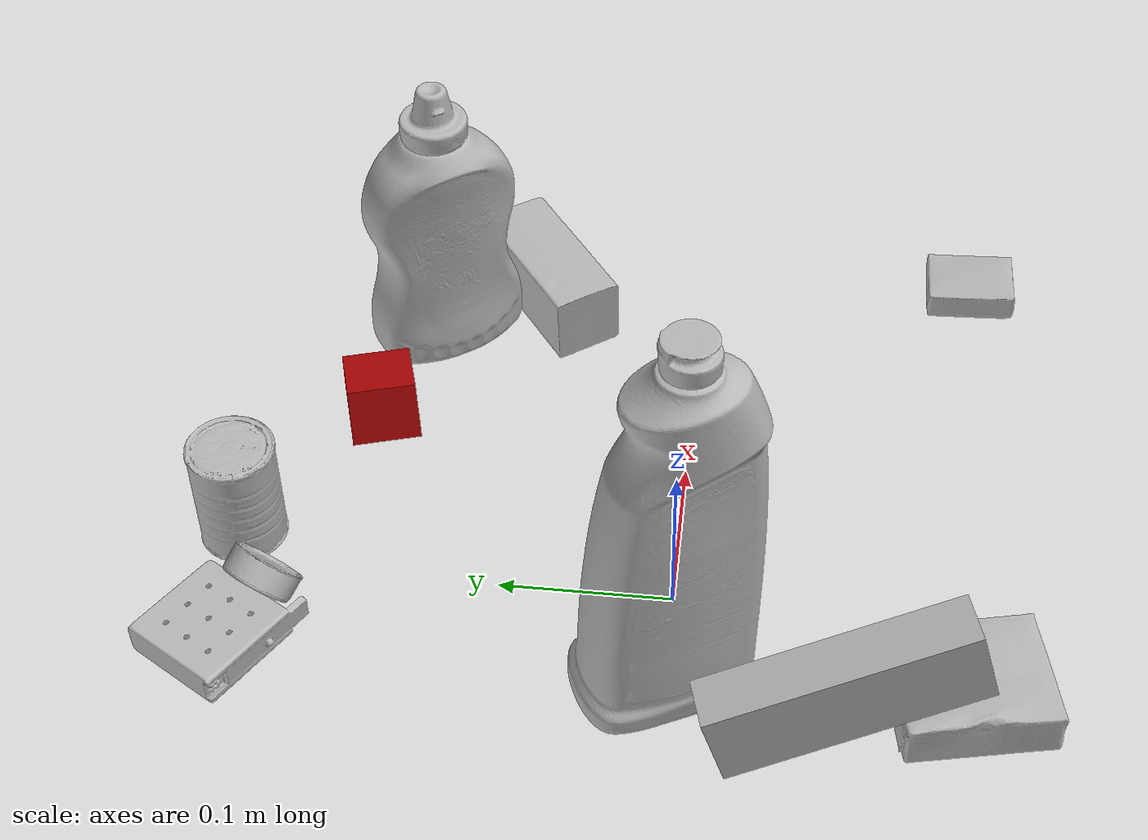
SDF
<sdf version="1.4">
  <world name="default">
    <light name="light1" type="point">
      <pose>0 0 1 0 0 0</pose>
      <diffuse>3 3 3 1</diffuse>
      <specular>3 3 3 1</specular>
    </light>
    <light name="light2" type="point">
      <pose>0 0.5 2 0 0 0</pose>
      <diffuse>1 1 1 1</diffuse>
      <specular>1 1 1 1</specular>
    </light>
    <light name="light3" type="point">
      <pose>0 0.5 2 0 0 0</pose>
      <diffuse>3 3 3 1</diffuse>
      <specular>3 3 3 1</specular>
    </light>
    <scene>
      <ambient>0.7 0.7 0.7</ambient>
    </scene>
    <model name="bottle1">
      <link name="link_bottle1">
        <collision name="default">
          <geometry>
            <mesh>
              <uri>model://mustard_bottle/collision_meshes/collision.obj</uri>
              <scale>1.0 1.0 1.0</scale>
            </mesh>
          </geometry>
          <surface>
            <friction>
              <ode>
                <mu>0.5</mu>
                <mu2>0.5</mu2>
              </ode>
            </friction>
          <contact>
        <ode>
            <max_vel>0</max_vel>
            <min_depth>0.0001</min_depth>
            <kp>1e8</kp>
        </ode>
    </contact></surface>
        </collision>
        <visual name="default">
          <geometry>
            <mesh>
              <uri>model://mustard_bottle/visual_meshes/visual.dae</uri>
              <scale>1.0 1.0 1.0</scale>
            </mesh>
          </geometry>
        </visual>
        <inertial>
          <mass>0.6762011647224426</mass>
          <pose>0.0005032454500906169 -0.00015647402324248105 -0.0174757931381464 0.0004182330054410876 0.0009465793907204819 0.02485376893997312</pose>
          <inertia>
            <ixx>0.001877718</ixx>
            <iyy>0.0016475386</iyy>
            <izz>0.0004948735</izz>
            <ixy>0</ixy>
            <ixz>0</ixz>
            <iyz>0</iyz>
          </inertia>
        </inertial>
      </link>
      <pose>0.20956969261169434 0.16297370195388794 0.09615202248096466 1.5153036769805884e-05 1.6853685832837085e-05 -2.5324512954043614</pose>
    </model>
    <model name="bottle2">
      <link name="link_bottle2">
        <collision name="default">
          <geometry>
            <mesh>
              <uri>model://bleach_cleanser/collision_meshes/collision.obj</uri>
              <scale>1.0 1.0 1.0</scale>
            </mesh>
          </geometry>
          <surface>
            <friction>
              <ode>
                <mu>0.5</mu>
                <mu2>0.5</mu2>
              </ode>
            </friction>
          <contact>
        <ode>
            <max_vel>0</max_vel>
            <min_depth>0.0001</min_depth>
            <kp>1e8</kp>
        </ode>
    </contact></surface>
        </collision>
        <visual name="default">
          <geometry>
            <mesh>
              <uri>model://bleach_cleanser/visual_meshes/visual.dae</uri>
              <scale>1.0 1.0 1.0</scale>
            </mesh>
          </geometry>
        </visual>
        <inertial>
          <mass>1.3947629928588867</mass>
          <pose>0.00012193183647468686 0.0037838828284293413 -0.02442161738872528 -0.07381670616230765 0.000420115363335565 -0.006875068774372656</pose>
          <inertia>
            <ixx>0.0067885136</ixx>
            <iyy>0.006325901</iyy>
            <izz>0.0011606595</izz>
            <ixy>0</ixy>
            <ixz>0</ixz>
            <iyz>0</iyz>
          </inertia>
        </inertial>
      </link>
      <pose>-0.054424792528152466 0.001064325449988246 0.12578415870666504 -0.00020029483081847953 1.6162023384173062e-05 -2.6892401541355806</pose>
    </model>
    <model name="toy1">
      <link name="link_toy1">
        <collision name="default">
          <geometry>
            <mesh>
              <uri>model://nine_hole_peg_test/collision_meshes/collision.obj</uri>
              <scale>0.5 0.5 0.5</scale>
            </mesh>
          </geometry>
          <surface>
            <friction>
              <ode>
                <mu>0.5</mu>
                <mu2>0.5</mu2>
              </ode>
            </friction>
          <contact>
        <ode>
            <max_vel>0</max_vel>
            <min_depth>0.0001</min_depth>
            <kp>1e8</kp>
        </ode>
    </contact></surface>
        </collision>
        <visual name="default">
          <geometry>
            <mesh>
              <uri>model://nine_hole_peg_test/visual_meshes/visual.dae</uri>
              <scale>0.5 0.5 0.5</scale>
            </mesh>
          </geometry>
        </visual>
        <inertial>
          <mass>0.11556825786828995</mass>
          <pose>-0.0023086932487785816 -0.004823807626962662 1.3230343029135838e-05 -0.0014666797633517714 0.0007194158879745651 -0.6342419016734399</pose>
          <inertia>
            <ixx>4.5177487e-05</ixx>
            <iyy>4.2181746e-05</iyy>
            <izz>7.9164296e-05</izz>
            <ixy>0</ixy>
            <ixz>0</ixz>
            <iyz>0</iyz>
          </inertia>
        </inertial>
      </link>
      <pose>-0.053338322788476944 0.24720045924186707 0.010385501198470592 -1.063985721460912e-08 -2.3402835389266576e-08 -2.1147539133982094</pose>
    </model>
    <model name="toy2">
      <link name="link_toy2">
        <collision name="default">
          <geometry>
            <mesh>
              <uri>model://prism/collision_meshes/collision.obj</uri>
              <scale>0.5 0.5 0.5</scale>
            </mesh>
          </geometry>
          <surface>
            <friction>
              <ode>
                <mu>0.5</mu>
                <mu2>0.5</mu2>
              </ode>
            </friction>
          <contact>
        <ode>
            <max_vel>0</max_vel>
            <min_depth>0.0001</min_depth>
            <kp>1e8</kp>
        </ode>
    </contact></surface>
        </collision>
        <visual name="default">
          <geometry>
            <mesh>
              <uri>model://prism/visual_meshes/visual.dae</uri>
              <scale>0.5 0.5 0.5</scale>
            </mesh>
          </geometry>
        </visual>
        <inertial>
          <mass>0.033433690667152405</mass>
          <pose>-4.9267986469203606e-05 -2.480786349678965e-07 -0.001693455153144896 0.0 0.00655918030046738 0.0</pose>
          <inertia>
            <ixx>7.543374e-06</ixx>
            <iyy>9.116264e-06</iyy>
            <izz>1.1166334e-05</izz>
            <ixy>0</ixy>
            <ixz>0</ixz>
            <iyz>0</iyz>
          </inertia>
        </inertial>
      </link>
      <pose>0.13519150018692017 0.1928470879793167 0.016084996983408928 1.338780621188728e-07 1.7033011760156564e-08 -2.8497010923446227</pose>
    </model>
    <model name="can1">
      <link name="link_can1">
        <collision name="default">
          <geometry>
            <mesh>
              <uri>model://master_chef_can/collision_meshes/collision.obj</uri>
              <scale>0.5 0.5 0.5</scale>
            </mesh>
          </geometry>
          <surface>
            <friction>
              <ode>
                <mu>0.5</mu>
                <mu2>0.5</mu2>
              </ode>
            </friction>
          <contact>
        <ode>
            <max_vel>0</max_vel>
            <min_depth>0.0001</min_depth>
            <kp>1e8</kp>
        </ode>
    </contact></surface>
        </collision>
        <visual name="default">
          <geometry>
            <mesh>
              <uri>model://master_chef_can/visual_meshes/visual.dae</uri>
              <scale>0.5 0.5 0.5</scale>
            </mesh>
          </geometry>
        </visual>
        <inertial>
          <mass>0.10766725987195969</mass>
          <pose>-4.661964703700505e-05 1.3926853625889635e-07 -5.079878610558808e-05 -0.0017995160150511523 0.000647916474058074 -0.6102670332280266</pose>
          <inertia>
            <ixx>6.319339e-05</ixx>
            <iyy>6.2728286e-05</iyy>
            <izz>3.491918e-05</izz>
            <ixy>0</ixy>
            <ixz>0</ixz>
            <iyz>0</iyz>
          </inertia>
        </inertial>
      </link>
      <pose>0.026547154411673546 0.25427618622779846 0.03530197963118553 -1.3239260647761384e-06 -7.943104863570559e-07 -1.030282932591494</pose>
    </model>
    <model name="can2">
      <link name="link_can2">
        <collision name="default">
          <geometry>
            <mesh>
              <uri>model://tuna_fish_can/collision_meshes/collision.obj</uri>
              <scale>0.5 0.5 0.5</scale>
            </mesh>
          </geometry>
          <surface>
            <friction>
              <ode>
                <mu>0.5</mu>
                <mu2>0.5</mu2>
              </ode>
            </friction>
          <contact>
        <ode>
            <max_vel>0</max_vel>
            <min_depth>0.0001</min_depth>
            <kp>1e8</kp>
        </ode>
    </contact></surface>
        </collision>
        <visual name="default">
          <geometry>
            <mesh>
              <uri>model://tuna_fish_can/visual_meshes/visual.dae</uri>
              <scale>0.5 0.5 0.5</scale>
            </mesh>
          </geometry>
        </visual>
        <inertial>
          <mass>0.02740846574306488</mass>
          <pose>-2.0361561837489717e-05 -7.256384378706571e-06 -0.0005269024986773729 -0.0017944791545750336 0.000171617609773777 0.24054039995463303</pose>
          <inertia>
            <ixx>3.7056664e-06</ixx>
            <iyy>3.6902204e-06</iyy>
            <izz>6.3409243e-06</izz>
            <ixy>0</ixy>
            <ixz>0</ixz>
            <iyz>0</iyz>
          </inertia>
        </inertial>
      </link>
      <pose>-0.02184179425239563 0.2300357222557068 0.021523067727684975 0.8407014348019644 -0.5006800134380173 1.4300885995732944</pose>
    </model>
    <model name="box1">
      <link name="link_box1">
        <collision name="default">
          <geometry>
            <mesh>
              <uri>model://gelatin_box/collision_meshes/collision.obj</uri>
              <scale>1.0 1.0 1.0</scale>
            </mesh>
          </geometry>
          <surface>
            <friction>
              <ode>
                <mu>0.5</mu>
                <mu2>0.5</mu2>
              </ode>
            </friction>
          <contact>
        <ode>
            <max_vel>0</max_vel>
            <min_depth>0.0001</min_depth>
            <kp>1e8</kp>
        </ode>
    </contact></surface>
        </collision>
        <visual name="default">
          <geometry>
            <mesh>
              <uri>model://gelatin_box/visual_meshes/visual.dae</uri>
              <scale>1.0 1.0 1.0</scale>
            </mesh>
          </geometry>
        </visual>
        <inertial>
          <mass>0.1693437397480011</mass>
          <pose>0.0004319618456065655 0.00011156872642459348 -0.00036403213744051754 -0.0010503721973280913 -0.004755817758053359 0.01644055760876268</pose>
          <inertia>
            <ixx>0.00011954286</ixx>
            <iyy>8.538885e-05</iyy>
            <izz>0.0001819709</izz>
            <ixy>0</ixy>
            <ixz>0</ixz>
            <iyz>0</iyz>
          </inertia>
        </inertial>
      </link>
      <pose>-0.05534087121486664 -0.16379457712173462 0.015168153680860996 0.0055931423703349335 -0.007288748845823487 -2.93635593995051</pose>
    </model>
    <model name="box2">
      <link name="link_box2">
        <collision name="default">
          <geometry>
            <mesh>
              <uri>model://pudding_box/collision_meshes/collision.obj</uri>
              <scale>0.5 0.5 0.5</scale>
            </mesh>
          </geometry>
          <surface>
            <friction>
              <ode>
                <mu>0.5</mu>
                <mu2>0.5</mu2>
              </ode>
            </friction>
          <contact>
        <ode>
            <max_vel>0</max_vel>
            <min_depth>0.0001</min_depth>
            <kp>1e8</kp>
        </ode>
    </contact></surface>
        </collision>
        <visual name="default">
          <geometry>
            <mesh>
              <uri>model://pudding_box/visual_meshes/visual.dae</uri>
              <scale>0.5 0.5 0.5</scale>
            </mesh>
          </geometry>
        </visual>
        <inertial>
          <mass>0.04695427790284157</mass>
          <pose>0.00024474109522998333 0.00040339428232982755 -0.0002594413817860186 0.005213102262859105 -0.0066037982576109796 0.020079825159299278</pose>
          <inertia>
            <ixx>1.3269848e-05</ixx>
            <iyy>8.9280475e-06</iyy>
            <izz>1.95964e-05</izz>
            <ixy>0</ixy>
            <ixz>0</ixz>
            <iyz>0</iyz>
          </inertia>
        </inertial>
      </link>
      <pose>0.27763861417770386 -0.17347030341625214 0.009862905368208885 0.022348463551855574 -0.011391677081615021 3.1414610841646833</pose>
    </model>
    <model name="box3">
      <link name="link_box3">
        <collision name="default">
          <geometry>
            <mesh>
              <uri>model://wood_block/collision_meshes/collision.obj</uri>
              <scale>0.5 0.5 0.5</scale>
            </mesh>
          </geometry>
          <surface>
            <friction>
              <ode>
                <mu>0.5</mu>
                <mu2>0.5</mu2>
              </ode>
            </friction>
          <contact>
        <ode>
            <max_vel>0</max_vel>
            <min_depth>0.0001</min_depth>
            <kp>1e8</kp>
        </ode>
    </contact></surface>
        </collision>
        <visual name="default">
          <geometry>
            <mesh>
              <uri>model://wood_block/visual_meshes/visual.dae</uri>
              <scale>0.5 0.5 0.5</scale>
            </mesh>
          </geometry>
        </visual>
        <inertial>
          <mass>0.2591375410556793</mass>
          <pose>-2.9066577553749084e-06 -0.00028540476341731846 0.00013204291462898254 -0.05221026556657302 -0.005192695801982805 -0.006861378038707315</pose>
          <inertia>
            <ixx>8.669131e-05</ixx>
            <iyy>0.00027385785</iyy>
            <izz>0.00027283354</izz>
            <ixy>0</ixy>
            <ixz>0</ixz>
            <iyz>0</iyz>
          </inertia>
        </inertial>
      </link>
      <pose>0.24462567269802094 0.10061671584844589 0.022629259154200554 -0.005208363132290541 0.005718730847690079 0.621732760835135</pose>
    </model>
    <model name="box4">
      <link name="link_box4">
        <collision name="default">
          <geometry>
            <mesh>
              <uri>model://jenga/collision_meshes/collision.obj</uri>
              <scale>1.0 1.0 1.0</scale>
            </mesh>
          </geometry>
          <surface>
            <friction>
              <ode>
                <mu>0.5</mu>
                <mu2>0.5</mu2>
              </ode>
            </friction>
          <contact>
        <ode>
            <max_vel>0</max_vel>
            <min_depth>0.0001</min_depth>
            <kp>1e8</kp>
        </ode>
    </contact></surface>
        </collision>
        <visual name="default">
          <geometry>
            <mesh>
              <uri>model://jenga/visual_meshes/visual.dae</uri>
              <scale>1.0 1.0 1.0</scale>
            </mesh>
          </geometry>
        </visual>
        <inertial>
          <mass>0.14610815048217773</mass>
          <pose>-2.502855807051674e-07 -0.00010250010382151231 -4.092339804628864e-05 0.0 -7.342155186052628e-07 0.0</pose>
          <inertia>
            <ixx>4.043167e-05</ixx>
            <iyy>0.0002739639</iyy>
            <izz>0.00029247976</izz>
            <ixy>0</ixy>
            <ixz>0</ixz>
            <iyz>0</iyz>
          </inertia>
        </inertial>
      </link>
      <pose>-0.08549167215824127 -0.09526452422142029 0.04438791051506996 -1.5549506779814113 0.2820447782232724 1.8400675022853201</pose>
    </model>
  <physics type="ode">
      <max_contacts>50</max_contacts>
      <ode>
        <solver>
          <type>quick</type>
          <iters>75</iters>
        </solver>
        <constraints>
          <contact_max_correcting_vel>0</contact_max_correcting_vel>
          <contact_surface_layer>0</contact_surface_layer>
        </constraints>
      </ode>
    </physics></world>
</sdf>
